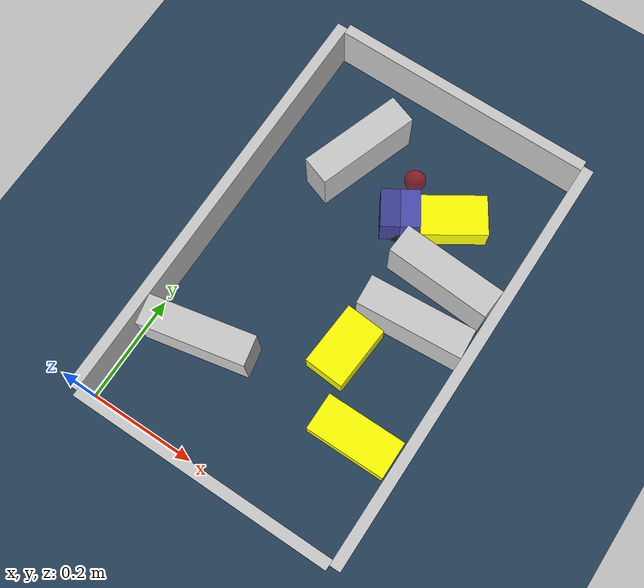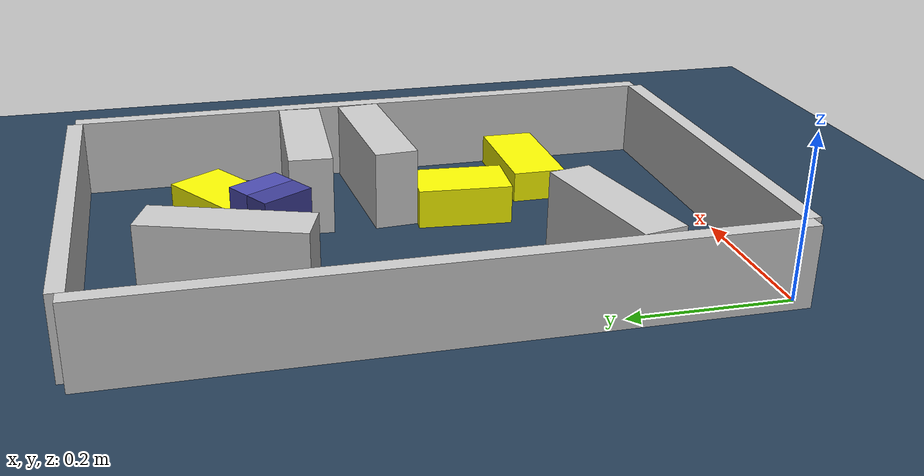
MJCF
<?xml version='1.0' encoding='utf-8'?>
<mujoco model="real_buildable">
  <compiler angle="degree" />
  <option timestep="0.002" integrator="implicitfast" iterations="100" cone="elliptic" />
  <default>
    <geom density="1" />
  </default>
  <asset>
    <texture builtin="gradient" height="3072" rgb1="0.3 0.5 0.7" rgb2="0 0 0" type="skybox" width="512" />
    <texture builtin="checker" height="300" mark="edge" markrgb="0.8 0.8 0.8" name="groundplane" rgb1="0.2 0.3 0.4" rgb2="0.1 0.2 0.3" type="2d" width="300" />
    <material name="groundplane" reflectance="0.2" texrepeat="5 5" texture="groundplane" texuniform="true" />
  </asset>
  <worldbody>
    <light dir="0 0 -1" directional="true" pos="0 0 1.5" />
    <geom name="floor" type="plane" condim="4" friction="0.5 0.005 0.001" material="groundplane" size="0 0 0.05" />
    <body name="walls">
      <geom name="wall_boundary_left" type="box" condim="4" friction="1.0 0.005 0.0001" rgba="0.8 0.8 0.8 1" pos="-0.010000 0.387500 0.050000" euler="0 0 0.000000" size="0.010000 0.397500 0.050000" />
      <geom name="wall_boundary_right" type="box" condim="4" friction="1.0 0.005 0.0001" rgba="0.8 0.8 0.8 1" pos="0.500000 0.387500 0.050000" euler="0 0 0.000000" size="0.010000 0.397500 0.050000" />
      <geom name="wall_boundary_bottom" type="box" condim="4" friction="1.0 0.005 0.0001" rgba="0.8 0.8 0.8 1" pos="0.245000 -0.010000 0.050000" euler="0 0 0.000000" size="0.245000 0.010000 0.050000" />
      <geom name="wall_boundary_top" type="box" condim="4" friction="1.0 0.005 0.0001" rgba="0.8 0.8 0.8 1" pos="0.245000 0.785000 0.050000" euler="0 0 0.000000" size="0.245000 0.010000 0.050000" />
      <geom name="wall_inner_1" type="box" condim="4" friction="1.0 0.005 0.0001" rgba="0.8 0.8 0.8 1" pos="0.101057 0.178335 0.050000" euler="0 0 11.746777" size="0.097500 0.027500 0.050000" />
      <geom name="wall_inner_2" type="box" condim="4" friction="1.0 0.005 0.0001" rgba="0.8 0.8 0.8 1" pos="0.390737 0.397030 0.050000" euler="0 0 4.229761" size="0.097500 0.027500 0.050000" />
      <geom name="wall_inner_3" type="box" condim="4" friction="1.0 0.005 0.0001" rgba="0.8 0.8 0.8 1" pos="0.391000 0.492000 0.050000" euler="0 0 176.500000" size="0.097500 0.027500 0.050000" />
      <geom name="wall_inner_4" type="box" condim="4" friction="1.0 0.005 0.0001" rgba="0.8 0.8 0.8 1" pos="0.138000 0.613000 0.050000" euler="0 0 71.100000" size="0.097500 0.027500 0.050000" />
    </body>
    <body name="car" pos="0.26388321592165837 0.55187069225305918 0.01" quat="0.96295381401155389 0 0 0.26966637180153141">
      <freejoint name="car_freejoint" />
      <inertial pos="0 0 0.0375" mass="0.35" diaginertia="0.000266 0.000266 0.000286" />
      <geom name="front_chassis_collision" type="box" pos="0.0175 0 0.0375" size="0.0175 0.035 0.0325" rgba="0.3 0.3 0.7 1" />
      <geom name="rear_chassis_collision" type="box" pos="-0.0175 0 0.0375" size="0.0175 0.035 0.0325" rgba="0.25 0.25 0.6 1" />
      <geom name="front_marker" type="box" pos="0.034 0 0.0505" size="0.002 0.015 0.01" rgba="1 0.2 0.2 1" contype="0" conaffinity="0" />
      <body name="rear_support_body" pos="-0.03 0 0.0025">
        <joint name="rear_caster_joint" type="ball" damping="0.0001" />
        <inertial pos="0 0 0" mass="0.025" diaginertia="0.000001 0.000001 0.000001" />
        <geom name="rear_support" type="sphere" pos="0 0 0" size="0.0025" friction="0 0 0" rgba="0.7 0.1 0.1 1" />
      </body>
      <body name="front_support_body" pos="0.03 0 0.0025">
        <joint name="front_caster_joint" type="ball" damping="0.0001" />
        <inertial pos="0 0 0" mass="0.025" diaginertia="0.000001 0.000001 0.000001" />
        <geom name="front_support" type="sphere" pos="0 0 0" size="0.0025" friction="0 0 0" rgba="0.1 0.7 0.1 1" />
      </body>
      <body name="left_wheel" pos="0 0.0375 0.015">
        <inertial pos="0 0 0" mass="0.05" diaginertia="0.000003 0.000006 0.000003" />
        <joint name="left_wheel_joint" type="hinge" axis="0 1 0" damping="0.01" armature="0.0001" />
        <geom name="left_wheel_collision" type="cylinder" size="0.015 0.0005" euler="90 0 0" rgba="0.1 0.1 0.1 1" />
      </body>
      <body name="right_wheel" pos="0 -0.0375 0.015">
        <inertial pos="0 0 0" mass="0.05" diaginertia="0.000003 0.000006 0.000003" />
        <joint name="right_wheel_joint" type="hinge" axis="0 1 0" damping="0.01" armature="0.0001" />
        <geom name="right_wheel_collision" type="cylinder" size="0.015 0.0005" euler="90 0 0" rgba="0.1 0.1 0.1 1" />
      </body>
    </body>
    <body name="obstacle_0_movable">
      <geom name="obstacle_0_movable" condim="4" pos="0.31407634480828645 0.30095264127457189 0.025000000000000001" friction="1 0.005 0.0001" rgba="1 1 0 1" size="0.037500 0.060000 0.025000" type="box" mass="0.1" quat="0.035286030940476269 0 0 0.99937725410400835" />
      <joint type="free" />
    </body>
    <body name="obstacle_1_movable">
      <geom name="obstacle_1_movable" condim="4" pos="0.34506612980747731 0.60353340616759277 0.025000000000000001" friction="1 0.005 0.0001" rgba="1 1 0 1" size="0.037500 0.060000 0.025000" type="box" mass="0.1" quat="0.87827252846967752 0 0 -0.47816039749803579" />
      <joint type="free" />
    </body>
    <body name="obstacle_2_movable">
      <geom name="obstacle_2_movable" condim="4" pos="0.41169794605627252 0.18522062688431909 0.02" friction="1 0.005 0.0001" rgba="1 1 0 1" size="0.035000 0.075000 0.020000" type="box" mass="0.1" quat="0.70653613618890443 0 0 0.70767696603694397" />
      <joint type="free" />
    </body>
    <site name="goal" type="sphere" pos="0.245000 0.640000 0.0" size="0.02" rgba="1 0 0 0.5" />
  </worldbody>
  <actuator>
    <velocity name="left_wheel_drive" joint="left_wheel_joint" ctrlrange="-25 25" kv="0.75" forcerange="-0.5 0.5" />
    <velocity name="right_wheel_drive" joint="right_wheel_joint" ctrlrange="-25 25" kv="0.75" forcerange="-0.5 0.5" />
  </actuator>
</mujoco>
